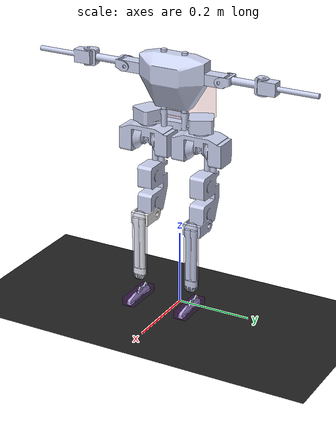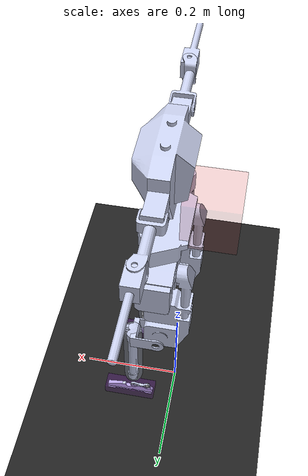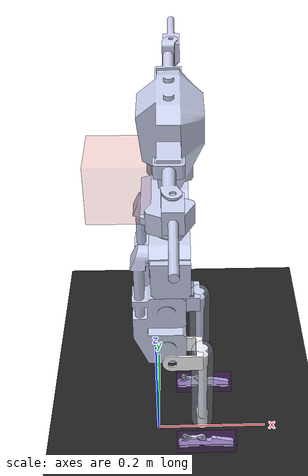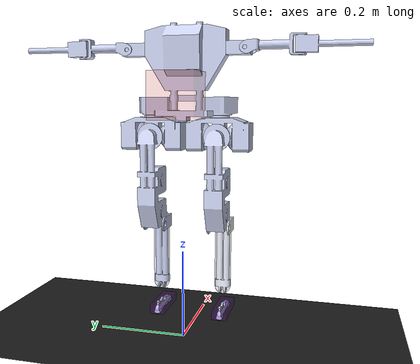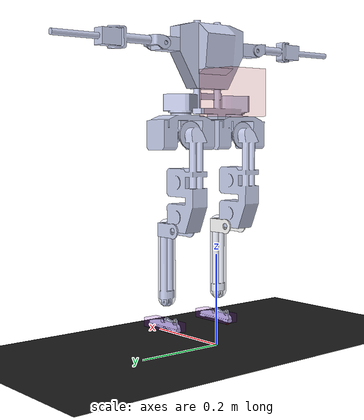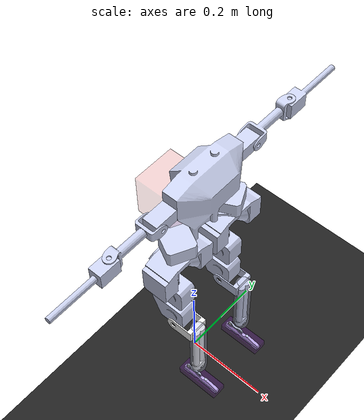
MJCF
<mujoco model="og_bruce scene">

  <include file="og_bruce.xml"/>

  <!-- Define explicit contacts with the scene -->
  <contact>
    <!-- Floor collision with the flat floor -->
    <pair geom1="foot_contact_r" geom2="floor" solref="0.02 1" solimp="0.75 0.95 0.002 0.9 2"/>
    <pair geom1="foot_contact_l" geom2="floor" solref="0.02 1" solimp="0.75 0.95 0.002 0.9 2"/>

  </contact>

  <statistic center="0 0 1.0" extent="1.2"/>

  <visual>
    <headlight diffuse="0.6 0.6 0.6" ambient="0.3 0.3 0.3" specular="0 0 0"/>
    <rgba haze="0.2 0.2 0.2 1"/>
    <global azimuth="120" elevation="-20"/>
  </visual>

  <asset>
    <texture type="skybox" builtin="gradient" rgb1="0.1 0.1 0.1" rgb2="0 0 0" width="512" height="3072"/>
    <texture type="2d" name="groundplane" builtin="checker"
            rgb1="0.2 0.2 0.2" rgb2="0.05 0.05 0.05"
            mark="edge" markrgb="0.6 0.6 0.6"
            width="300" height="300"/>
    <material name="groundplane" texture="groundplane"
              texuniform="true" texrepeat="5 5" reflectance="0.05"/>
  </asset>

  <worldbody>
    <light pos="0 0 1.5" dir="0 0 -1" directional="true"/>
    <!-- Flat floor -->
    <geom name="floor" size="0 0 0.05" type="plane" contype="0" conaffinity="0" material="groundplane"/>
    <!-- Stationary camera wrt to world -->
    <camera name="side_view" pos="0.846 -1.465 0.916" xyaxes="0.866 0.500 0.000 -0.171 0.296 0.940"/>
  </worldbody>
</mujoco>

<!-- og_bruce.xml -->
<mujoco model="BRUCE_OG_SIMPLE_urdf">
    <compiler angle="radian" autolimits="true"/>

    <option impratio="5" iterations="3" ls_iterations="5" tolerance="1e-6" ls_tolerance="0.02" integrator="implicitfast" timestep="0.005">
            <flag gravity="enable" eulerdamp="disable"/>
    </option>

    <default>
        <default class="og_bruce">
            <geom contype="0" rgba="0.79216 0.81961 0.93333 1.0" conaffinity="0" type="mesh" group="2"/>
            <joint damping="1.0" armature="0.013"/>

            <default class="og_bruce/collision">
                <!-- Group right now is arbitrary -->
                <geom group="1" rgba="0.79216 0.81961 0.93333 0.4" friction="1.0 0.02 0.01"/>
                <!-- Foot collision geometry -->
                <default class="og_bruce/collision/foot" >
                    <!-- Box geometry version -->
                    <geom contype="1" conaffinity="1" type="box" size="0.01 0.053 0.017" pos="0.014 0.008 0.0" rgba="0.5 0.0 0.8 0.2"/>
                    <!-- capsule geometry version -->

                </default>

                <!-- Shin collision geometry -->
                <default class="og_bruce/collision/shin" >
                    <geom contype="2" conaffinity="2" type="capsule" size="0.019 0.078" pos="0.075 0.05 0.0"/>
                </default>

            </default>

            <default class="og_bruce/affine_bear">
                <joint armature="1.82000000e-02" damping="1.10816751e-03" stiffness="0.0" frictionloss="6.59247142e-02"/>
                <position kp="65" kv="0.9" ctrlrange="-3.141592 3.141592" forcerange="-8.0 8.0"/>

            </default>

            <default class="og_bruce/affine_dynamixel">
                <joint damping="1.084" armature="0.045" frictionloss="0.03"/>
                <position kp="21.1" ctrlrange="-3.141592 3.141592" forcerange="-5 5"/>
            </default>
        </default>
    </default>

    <asset>
        <mesh name="base_link" file="og_bruce_meshes/base_link.STL"/>
        <mesh name="hip_yaw_r" file="og_bruce_meshes/hip_yaw_r.STL"/>
        <mesh name="hip_pitch_r" file="og_bruce_meshes/hip_pitch_r.STL"/>
        <mesh name="hip_roll_r" file="og_bruce_meshes/hip_roll_r.STL"/>
        <mesh name="knee_pitch_r" file="og_bruce_meshes/knee_pitch_r.STL"/>
        <mesh name="ankle_pitch_r" file="og_bruce_meshes/ankle_pitch_r.STL"/>
        <mesh name="hip_yaw_l" file="og_bruce_meshes/hip_yaw_l.STL"/>
        <mesh name="hip_pitch_l" file="og_bruce_meshes/hip_pitch_l.STL"/>
        <mesh name="hip_roll_l" file="og_bruce_meshes/hip_roll_l.STL"/>
        <mesh name="knee_pitch_l" file="og_bruce_meshes/knee_pitch_l.STL"/>
        <mesh name="ankle_pitch_l" file="og_bruce_meshes/ankle_pitch_l.STL"/>
        <mesh name="ankle_motor_link" file="og_bruce_meshes/ankle_motor_link.STL"/>
        <mesh name="ankle_motor_rod" file="og_bruce_meshes/ankle_motor_rod.STL"/>
        <mesh name="shoulder_pitch_r" file="og_bruce_meshes/shoulder_pitch_r.STL"/>
        <mesh name="shoulder_roll_r" file="og_bruce_meshes/shoulder_roll_r.STL"/>
        <mesh name="elbow_pitch_r" file="og_bruce_meshes/elbow_pitch_r.STL"/>
        <mesh name="shoulder_pitch_l" file="og_bruce_meshes/shoulder_pitch_l.STL"/>
        <mesh name="shoulder_roll_l" file="og_bruce_meshes/shoulder_roll_l.STL"/>
        <mesh name="elbow_pitch_l" file="og_bruce_meshes/elbow_pitch_l.STL"/>
    </asset>

    <worldbody>
        <!-- base link z at 0.5m to start in scene -->
        <body name="base_link" pos="0.0 0.0 0.5" quat="1.0 0.0 0.0 0.0" childclass="og_bruce">
            <!-- So the model isn't rigid in the air -->
            <freejoint />
            <!-- Camera wrt to COM to track the base link -->
            <camera name="track_com" pos="1.253 -1.502 0.378" xyaxes="0.768 0.641 0.000 -0.101 0.122 0.987" mode="trackcom"/>

            <geom type="mesh" mesh="base_link"/>
<!--            mass -0.3kg-->
            <inertial pos="0.02259605 -0.00011305 0.06140054" mass="1.01688922" diaginertia="0.0133543 0.01023631 0.005471"/>

            <!-- Extra mass box to randomize the COM ####################################################-->
            <body name="random_mass" pos="-0.05 0 0.05" quat="1 0 0 0">
                <joint name="random_mass"  type="slide" axis="0 0 1" limited="true" range="-0.001 0.001" stiffness="1" damping="1"/>
                <geom  name="random_mass_geom" type="box" size="0.05 0.05 0.05" rgba="0.8 0.2 0.2 0.1" mass="0.5" />
            </body>
            <!-- Extra mass box to randomize the COM ####################################################-->

            <!-- Extra mass to bias COM ####################################################-->
            <!-- Extra mass to bias COM ####################################################-->

            <!-- Right Leg ############################################################################################### -->
            <body name="hip_yaw_r" pos="0.029216 -0.0758557 -0.039765" quat="0.707107 0 0 -0.707107">
                            <inertial pos="2.71e-06 -0.00024824 0.00522427" quat="0.517691 0.482114 0.518083 0.480784" mass="0.637563" diaginertia="0.0016174 0.00152078 0.000485406"/>
                <joint name="hip_yaw_r" pos="0 0 0" axis="0 0 -1" range="-1.5708 1.5708"/>
                <geom type="mesh" mesh="hip_yaw_r"/>
                <body name="hip_pitch_r" quat="0.707107 0 0.707107 0">
                    <inertial pos="0 0 0" mass="0.05" diaginertia="9.8342e-07 9.4912e-07 5.4852e-07"/>
                    <joint name="hip_pitch_r" pos="0 0 0" axis="0 0 1" range="-0.43633 2.4435"/>
                    <geom type="mesh" mesh="hip_pitch_r"/>

                    <body name="hip_roll_r" quat="0.707107 -0.707107 0 0">
                        <inertial pos="0.12175 -0.00193 -0.01343" quat="0.475236 0.517443 0.542039 0.461083"
                                  mass="0.72849" diaginertia="0.00303236 0.00284069 0.000427703"/>
                        <joint name="hip_roll_r" pos="0 0 0" axis="0 0 1" range="-0.95993 0.95993"/>
                        <geom type="mesh" mesh="hip_roll_r"/>

                        <body name="knee_pitch_r" pos="0.204949 0 -0." quat="0.707107 0.707107 0 0">
                            <inertial pos="0.049407 0.03979 0.00043596" quat="-0.0540474 0.685679 -0.166088 0.706639"
                                      mass="0.0956654" diaginertia="0.000345577 0.000339699 4.45904e-05"/>
                            <joint name="knee_pitch_r" pos="0 0 0" axis="0 0 -1" range="0 2.4435"/>
                            <geom type="mesh" mesh="knee_pitch_r" rgba="1 1 1 1"/>

                            <!-- Contact geometry for right shin -->
                            <geom class="og_bruce/collision/shin" name="shin_contact_r" quat="0.707107 0 0.707107 0"/>

                            <body name="ankle_pitch_r" pos="0.199881 0.05053411 0">
                                <inertial pos="0.014913 0.0053931 0.00011234"
                                          quat="0.468881 0.503427 -0.499007 0.526977" mass="0.0276265"
                                          diaginertia="2.1159e-05 2.02708e-05 1.57584e-06"/>
                                <joint name="ankle_pitch_r" pos="0 0 0" axis="0 0 -1" range="-1.2566 1.0472"/>
                                <geom type="mesh" mesh="ankle_pitch_r"/>
                                <site name="ankle_attachment_r" pos="0 -0.03 0"/>

                                <!-- Contact geometry for right foot -->
                                <geom class="og_bruce/collision/foot" name="foot_contact_r" />

                                <!-- Sites for right foot contact sensors -->
                                <site name="footR_contact_site_front" pos="0.023 0.05 0" size="0.007" rgba="1 0 0 0.5"/>
                                <site name="footR_contact_site_back" pos="0.023 -0.032 0" size="0.007" rgba="1 0 0 0.5"/>

                            </body>
                        </body>
                        <body name="knee_pitch_r0" pos="0.204949 0 -0." quat="0.707107 0.707107 0 0">
                            <inertial pos="0.0 0.0 0.0" mass="0.0001"
                                      diaginertia="4.04275e-08 3.80418e-08 7.70463e-08"/>
                            <joint name="knee_pitch_r0" pos="0 0 0" axis="0 0 1"/>
                            <body name="ankle_pitch_r1" pos="0 -0.03  0" quat="0.9886517   0  0 0.1502256">
                                <joint name="ankle_pitch_r10" pos="0 0 0" axis="0 0 1"/>
                                <inertial pos="0.0 0.0 0.0" mass="0.0001"
                                          diaginertia="4.04275e-08 3.80418e-08 7.70463e-08"/>
                                <body name="knee_pitch_r1" pos="0.206 -0.011 0">
                                    <joint name="knee_pitch_r1" axis="0 0 1"/>`
                                    <inertial pos="0.0 0.0 0.0" mass="0.0001"
                                              diaginertia="4.04275e-08 3.80418e-08 7.70463e-08"/>
                                </body>
                            </body>
                        </body>
                    </body>
                </body>

                <body name="hip_actuatorR_l" quat="0.707107 0 0.707107 0">
                    <inertial pos="0 0 0" mass="0.001" diaginertia="1e-9 1e-9 1e-9"/>
                    <joint name="hip_actuatorR_l" pos="0 0 0" axis="0 0 1"/>
                </body>
                <body name="hip_actuatorR_r" quat="0.707107 0 0.707107 0">
                    <inertial pos="0 0 0" mass="0.001" diaginertia="1e-9 1e-9 1e-9"/>
                    <joint name="hip_actuatorR_r" pos="0 0 0" axis="0 0 -1"/>
                </body>
            </body>

            <!-- Left Leg ############################################################################################### -->
            <body name="hip_yaw_l" pos="0.029216 0.0758557 -0.039765" quat="0.707107 0 0 -0.707107">
                <inertial pos="0 -0.00020849 0.00528032" quat="0.518836 0.480432 0.518756 0.480506" mass="0.637386" diaginertia="0.00161868 0.00152047 0.0004852"/>
                <joint name="hip_yaw_l" pos="0 0 0" axis="0 0 -1" range="-1.5708 1.5708"/>
                <geom type="mesh" mesh="hip_yaw_l"/>

                <body name="hip_pitch_l" quat="0.707107 0 0.707107 0">
                    <inertial pos="0 0 0" mass="0.05" diaginertia="9.8342e-07 9.4912e-07 5.4852e-07"/>
                    <joint name="hip_pitch_l" pos="0 0 0" axis="0 0 1" range="-0.43633 2.4435"/>
                    <geom type="mesh" mesh="hip_pitch_l"/>

                    <body name="hip_roll_l" quat="0.707107 -0.707107 0 0">
                        <inertial pos="0.12174 0.0018 -0.01344" quat="0.458106 0.54719 0.511961 0.47814" mass="0.720628"
                                  diaginertia="0.00303267 0.00284036 0.00042805"/>
                        <joint name="hip_roll_l" pos="0 0 0" axis="0 0 1" range="-0.95993 0.95993"/>
                        <geom type="mesh" mesh="hip_roll_l"/>

                        <body name="knee_pitch_l" pos="0.204949 0 -0." quat="0.707107 0.707107 0 0">
                            <inertial pos="0.049014 0.039754 -0.00044194" quat="0.165544 0.706684 0.0527763 0.685862"
                                      mass="0.0952654" diaginertia="0.000341457 0.000335584 4.45378e-05"/>
                            <joint name="knee_pitch_l" pos="0 0 0" axis="0 0 -1" range="0 2.4435"/>
                            <geom type="mesh" mesh="knee_pitch_l"/>

                            <!-- Contact geometry for left shin -->
                            <geom class="og_bruce/collision/shin" name="shin_contact_l" quat="0.707107 0 0.707107 0"/>

                            <body name="ankle_pitch_l" pos="0.199881 0.0503411 0">
                                <inertial pos="0.01509 0.0056392 -0.00011925"
                                          quat="0.500518 0.525947 -0.470146 0.501821" mass="0.0274829"
                                          diaginertia="2.1386e-05 2.05126e-05 1.53437e-06"/>
                                <joint name="ankle_pitch_l" pos="0 0 0" axis="0 0 -1" range="-1.2566 1.0472"/>
                                <geom type="mesh" mesh="ankle_pitch_l"/>
                                <site name="ankle_attachment_l" pos="0 -0.03 0"/>

                                <!-- Contact geometry for left foot -->
                                <geom class="og_bruce/collision/foot" name="foot_contact_l" />

                                <!-- Sites for left foot contact sensors -->
                                <site name="footL_contact_site_front" pos="0.023 0.05 0" size="0.007" rgba="1 0 0 0.5"/>
                                <site name="footL_contact_site_back" pos="0.023 -0.032 0" size="0.007" rgba="1 0 0 0.5"/>

                            </body>
                        </body>
                        <body name="knee_pitch_l0" pos="0.204949 0 -0." quat="0.707107 0.707107 0 0">
                            <inertial pos="0.0 0.0 0.0" mass="0.0001"
                                      diaginertia="4.04275e-08 3.80418e-08 7.70463e-08"/>
                            <joint name="knee_pitch_l0" pos="0 0 0" axis="0 0 1"/>

                            <body name="ankle_pitch_l1" pos="0 -0.03  0" quat="0.9886517 0  0 0.1502256">
                                <joint name="ankle_pitch_l1" pos="0 0 0" axis="0 0 1"/>
                                <inertial pos="0.0 0.0 0.0" mass="0.0001"
                                          diaginertia="4.04275e-08 3.80418e-08 7.70463e-08"/>
                                <body name="knee_pitch_l1" pos="0.206 -0.011  0">
                                    <joint name="knee_pitch_l1" axis="0 0 1"/>
                                    <inertial pos="0.0 0.0 0.0" mass="0.0001"
                                              diaginertia="4.04275e-08 3.80418e-08 7.70463e-08"/>
                                </body>
                            </body>
                        </body>
                    </body>
                </body>

                <body name="hip_actuatorL_l" quat="0.707107 0 0.707107 0">
                    <inertial pos="0 0 0" mass="0.001" diaginertia="1e-9 1e-9 1e-9"/>
                    <joint name="hip_actuatorL_l" pos="0 0 0" axis="0 0 1"/>
                </body>

                <body name="hip_actuatorL_r" quat="0.707107 0 0.707107 0">
                    <inertial pos="0 0 0" mass="0.001" diaginertia="1e-9 1e-9 1e-9"/>
                    <joint name="hip_actuatorL_r" pos="0 0 0" axis="0 0 -1"/>
                </body>

            </body>

            <!-- Upper Body -->
            <body name="shoulder_pitch_r" pos="0.029801 -0.13225 0.151062" quat="0.5 0.5 -0.5 0.5">
                <inertial pos="0 -0.0004 -0.01353" quat="0.999973 -0.00739362 -1.23246e-06 4.94233e-06" mass="0.0493169"
                          diaginertia="1.6397e-05 1.54135e-05 8.45928e-06"/>
                <joint name="shoulder_pitch_r" pos="0 0 0" axis="0 0 -1" range="-3.1416 3.1416"/>
                <geom type="mesh" mesh="shoulder_pitch_r"/>
                <body name="shoulder_roll_r" quat="0.5 0.5 -0.5 0.5">
                    <inertial pos="0.05766 -0.00412 0.00077" quat="0.540311 0.434098 0.57106 0.439902" mass="0.0313652"
                              diaginertia="6.66828e-05 6.63384e-05 1.03399e-05"/>
                    <joint name="shoulder_roll_r" pos="0 0 0" axis="0 0 1" range="-1.4835 1.8326"/>
                    <geom type="mesh" mesh="shoulder_roll_r"/>
                    <body name="elbow_pitch_r" pos="0.1145 -0.005 0.005" quat="0.707107 0.707107 0 0">
                        <inertial pos="0.01939 0 0.00038" quat="0.50135 0.498646 0.498646 0.50135" mass="0.0524404"
                                  diaginertia="6.6448e-05 6.49187e-05 7.73303e-06"/>
                        <joint name="elbow_pitch_r" pos="0 0 0" axis="0 0 -1" range="-2.0595 1.5708"/>
                        <geom type="mesh" mesh="elbow_pitch_r"/>
                    </body>
                </body>
            </body>
            <body name="shoulder_pitch_l" pos="0.029801 0.13225 0.151062" quat="0.5 -0.5 0.5 0.5">
                <inertial pos="0 -0.0004 -0.01353" quat="0.999973 -0.00739362 -1.23246e-06 4.94233e-06" mass="0.0493169"
                          diaginertia="1.6397e-05 1.54135e-05 8.45928e-06"/>
                <joint name="shoulder_pitch_l" pos="0 0 0" axis="0 0 -1" range="-3.1416 3.1416"/>
                <geom type="mesh" mesh="shoulder_pitch_l"/>
                <body name="shoulder_roll_l" quat="0.499998 0.5 -0.5 0.500002">
                    <inertial pos="0.05766 0.00411 0.00077" quat="0.439864 0.571051 0.43411 0.540341" mass="0.0313652"
                              diaginertia="6.66824e-05 6.63384e-05 1.03402e-05"/>
                    <joint name="shoulder_roll_l" pos="0 0 0" axis="0 0 1" range="-1.8326 1.4835"/>
                    <geom type="mesh" mesh="shoulder_roll_l"/>
                    <body name="elbow_pitch_l" pos="0.1145 0.005 0.005" quat="0.707107 -0.707107 0 0">
                        <inertial pos="0.01939 0 0.00038" quat="0.50135 0.498646 0.498646 0.50135" mass="0.0524404"
                                  diaginertia="6.6448e-05 6.49187e-05 7.73303e-06"/>
                        <joint name="elbow_pitch_l" pos="0 0 0" axis="0 0 -1" range="-1.5708 2.0595"/>
                        <geom type="mesh" mesh="elbow_pitch_l"/>
                    </body>
                </body>
            </body>
        </body>
    </worldbody>

    <!-- Actuators for lower body joints using the leg actuator parameters -->
    <actuator>
        <!-- Right leg actuators with control ranges -->
        <position class="og_bruce/affine_bear" joint="hip_yaw_r" name="hip_yaw_r" />
        <position class="og_bruce/affine_bear" joint="hip_actuatorR_r" name="hip_actuatorR_r"/>
        <position class="og_bruce/affine_bear" joint="hip_actuatorR_l" name="hip_actuatorR_l"/>
        <position class="og_bruce/affine_bear" joint="knee_pitch_r" name="knee_pitch_r"/>
        <position class="og_bruce/affine_bear" joint="knee_pitch_r0" name="ankle_pitch_r" />

        <!-- Left leg actuators with control ranges -->
        <position class="og_bruce/affine_bear" joint="hip_yaw_l" name="hip_yaw_l" />
        <position class="og_bruce/affine_bear" joint="hip_actuatorL_r" name="hip_actuatorL_r"/>
        <position class="og_bruce/affine_bear" joint="hip_actuatorL_l" name="hip_actuatorL_l"/>
        <position class="og_bruce/affine_bear" joint="knee_pitch_l" name="knee_pitch_l"/>
        <position class="og_bruce/affine_bear" joint="knee_pitch_l0" name="ankle_pitch_l" />
    </actuator>

    <!-- Actuators for upper body joints using the arm actuator parameters -->
    <actuator>
        <!-- Right arm actuators -->
        <position class="og_bruce/affine_dynamixel" joint="shoulder_pitch_r" name="shoulder_pitch_r"/>
        <position class="og_bruce/affine_dynamixel" joint="shoulder_roll_r" name="shoulder_roll_r"/>
        <position class="og_bruce/affine_dynamixel" joint="elbow_pitch_r" name="elbow_pitch_r"/>

        <!-- Left arm actuators -->
        <position class="og_bruce/affine_dynamixel" joint="shoulder_pitch_l" name="shoulder_pitch_l"/>
        <position class="og_bruce/affine_dynamixel" joint="shoulder_roll_l" name="shoulder_roll_l"/>
        <position class="og_bruce/affine_dynamixel" joint="elbow_pitch_l" name="elbow_pitch_l"/>
    </actuator>

    <tendon>
        <!-- Parallel mechanism for right leg -->
        <fixed name="roll_r">
            <joint joint="hip_roll_r" coef="1"/>
        </fixed>
        <fixed name="pitch_r">
            <joint joint="hip_pitch_r" coef="1"/>
        </fixed>
        <fixed name="sum_r">
            <joint joint="hip_actuatorR_r" coef="0.5"/>
            <joint joint="hip_actuatorR_l" coef="0.5"/>
        </fixed>
        <fixed name="diff_r">
            <joint joint="hip_actuatorR_r" coef=".5"/>
            <joint joint="hip_actuatorR_l" coef="-.5"/>
        </fixed>

        <!-- Parallel mechanism for left leg -->
        <fixed name="roll_l">
            <joint joint="hip_roll_l" coef="1"/>
        </fixed>
        <fixed name="pitch_l">
            <joint joint="hip_pitch_l" coef="1"/>
        </fixed>
        <fixed name="sum_l">
            <joint joint="hip_actuatorL_r" coef="0.5"/>
            <joint joint="hip_actuatorL_l" coef="0.5"/>
        </fixed>
        <fixed name="diff_l">
            <joint joint="hip_actuatorL_r" coef=".5"/>
            <joint joint="hip_actuatorL_l" coef="-.5"/>
        </fixed>
    </tendon>

    <equality>
        <!-- For right differential mechanism -->
        <tendon tendon1="roll_r" tendon2="sum_r" polycoef="0 -1 0 0 0"/>
        <tendon tendon1="pitch_r" tendon2="diff_r" polycoef="0 -1 0 0 0"/>
        <!-- For left differential mechanism -->
        <tendon tendon1="roll_l" tendon2="sum_l" polycoef="0 -1 0 0 0"/>
        <tendon tendon1="pitch_l" tendon2="diff_l" polycoef="0 -1 0 0 0"/>
        <!-- For 5-bar linkage mechanisms -->
        <!-- Connecting body will assume the link is closed when loaded. Constraints can break with infeasible joints. -->
        <!-- Connecting sites will enforce two points to be connected, but the simulation becomes unstable when infeasible -->
        <connect anchor="0 0 0" solref="0.005 1.05" solimp="0.2 0.95 0.002 0.9 6" body1="knee_pitch_r1" body2="ankle_pitch_r" name="equality_knee_r"/>
        <connect anchor="0 0 0" solref="0.005 1.05" solimp="0.2 0.95 0.002 0.9 6" body1="knee_pitch_l1" body2="ankle_pitch_l" name="equality_knee_l"/>
    </equality>

    <contact>
        <!-- Collision between right shin and left shin -->
        <pair geom1="shin_contact_r" geom2="shin_contact_l"/>
        <!-- Collision between right shin and left foot -->
        <pair geom1="shin_contact_r" geom2="foot_contact_l"/>
        <!-- Collision between right foot and left shin -->
        <pair geom1="foot_contact_r" geom2="shin_contact_l"/>
        <!-- Collision between right foot and left foot -->
        <pair geom1="foot_contact_r" geom2="foot_contact_l"/>
    </contact>

    <keyframe>
        <key name="home"
            qpos="0.0 0.0 0.52
                    1 0 0 0
                    0
                    0 0.48 0 1.1 -0.65  -0.48  -0.62 0 0.48 -0.48
                    0 0.48 0 1.1 -0.65  -0.48  -0.62 0 0.48 -0.48
                    0 1.4 0
                    0 -1.4 0"
            ctrl="0  -0.48 0.48  1.1 -0.46 0  -0.48 0.48  1.1 -0.46 0 1.4 0 0 -1.4 0"/>

        <key name="home_st"
            qpos="0.0 0.0 0.48
                    1 0 0 0
                    0
                    0 0 0 0.4 -0.4 -0.03 -0.4 0 0 0
                    0 0 0 0.4 -0.4 -0.03 -0.4 0 0 0
                    0 1.4 0
                    0 -1.4 0"
            ctrl="0 0 0 0.4 -0.03 0 0 0 0.4 -0.03 0 1.4 0 0 -1.4 0"/>

    </keyframe>

 </mujoco>
